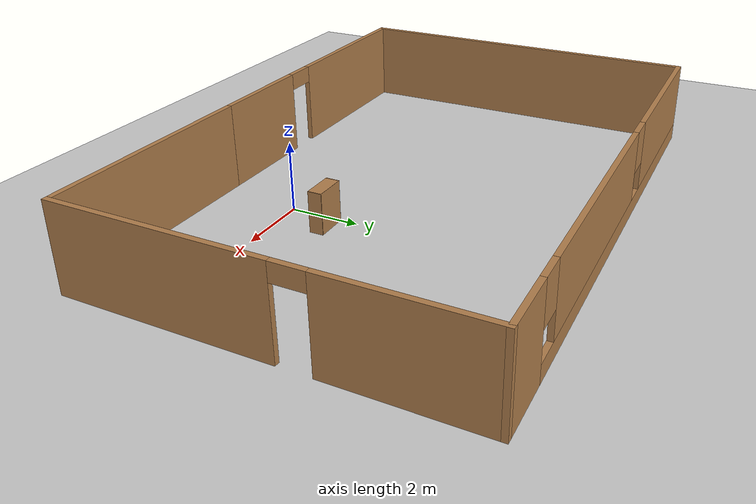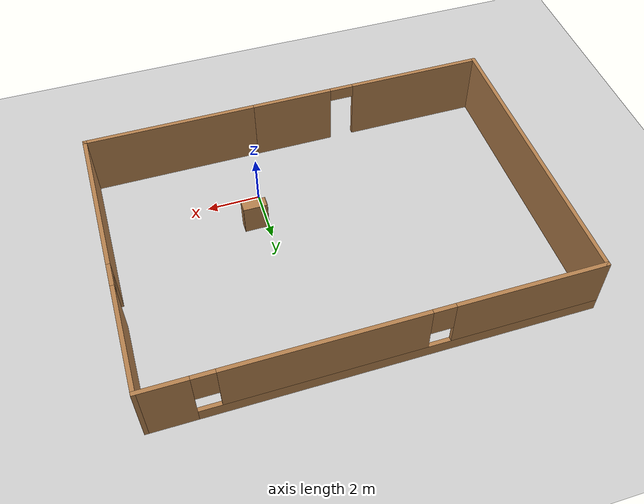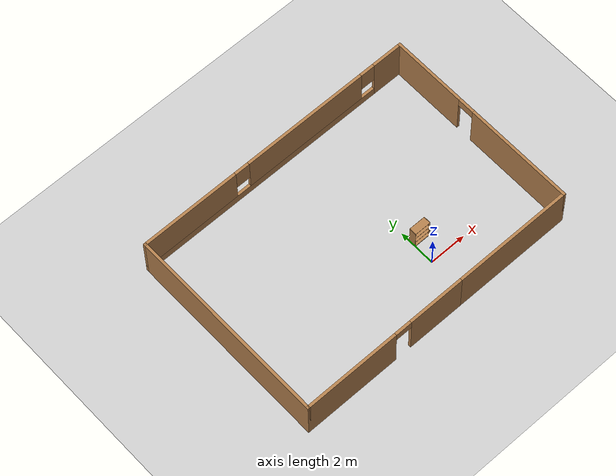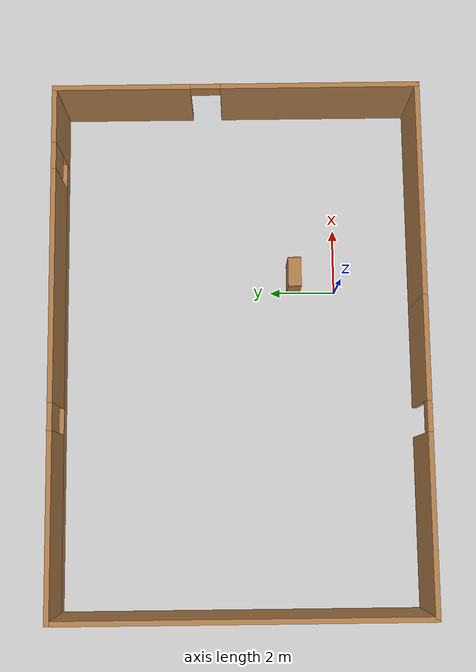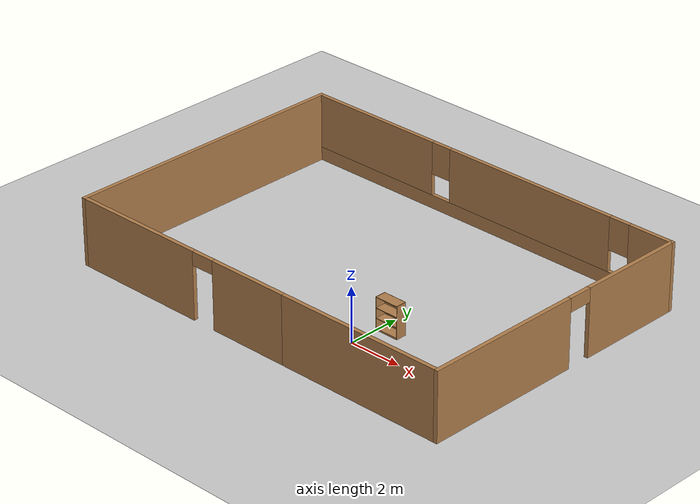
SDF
<sdf version="1.7">
 <world name="default">
  <light name="sun" type="directional">
   <pose>0 0 10 0 -0 0</pose>
   <diffuse>0.8 0.8 0.8 1</diffuse>
   <specular>0.2 0.2 0.2 1</specular>
   <attenuation>
    <range>1000</range>
    <constant>0.9</constant>
    <linear>0.01</linear>
    <quadratic>0.001</quadratic>
   </attenuation>
   <direction>-0.5 0.1 -0.9</direction>
   <spot><inner_angle>0</inner_angle><outer_angle>0</outer_angle><falloff>0</falloff></spot>
  </light>
  <model name="ground_plane">
   <static>1</static>
   <link name="link">
    <collision name="collision">
     <geometry><plane><normal>0 0 1</normal><size>100 100</size></plane></geometry>
     <surface><friction><ode><mu>100</mu><mu2>50</mu2></ode></friction></surface>
    </collision>
    <visual name="visual">
     <cast_shadows>0</cast_shadows>
     <geometry><plane><normal>0 0 1</normal><size>100 100</size></plane></geometry>
     <material>
      <script><uri>file://media/materials/scripts/gazebo.material</uri><name>Gazebo/Grey</name></script>
     </material>
    </visual>
   </link>
  </model>
  <gravity>0 0 -9.8</gravity>
  <magnetic_field>6e-06 2.3e-05 -4.2e-05</magnetic_field>
  <atmosphere type="adiabatic"/>
  <physics type="ode">
   <max_step_size>0.001</max_step_size>
   <real_time_factor>1</real_time_factor>
   <real_time_update_rate>1000</real_time_update_rate>
  </physics>
  <scene><ambient>0.4 0.4 0.4 1</ambient><background>0.7 0.7 0.7 1</background><shadows>1</shadows></scene>
  <audio><device>default</device></audio>
  <spherical_coordinates>
   <surface_model>EARTH_WGS84</surface_model>
   <latitude_deg>0</latitude_deg>
   <longitude_deg>0</longitude_deg>
   <elevation>0</elevation>
   <heading_deg>0</heading_deg>
  </spherical_coordinates>
  <model name="bookshelf">
   <static>1</static>
   <link name="link">
    <inertial><mass>1</mass></inertial>
    <collision name="back">
     <pose>0 0.005 0.6 0 -0 0</pose>
     <geometry><box><size>0.9 0.01 1.2</size></box></geometry>
    </collision>
    <visual name="visual1">
     <pose>0 0.005 0.6 0 -0 0</pose>
     <geometry><box><size>0.9 0.01 1.2</size></box></geometry>
     <material>
      <script><uri>file://media/materials/scripts/gazebo.material</uri><name>Gazebo/Wood</name></script>
     </material>
    </visual>
    <collision name="left_side">
     <pose>0.45 -0.195 0.6 0 -0 0</pose>
     <geometry><box><size>0.02 0.4 1.2</size></box></geometry>
    </collision>
    <visual name="visual2">
     <pose>0.45 -0.195 0.6 0 -0 0</pose>
     <geometry><box><size>0.02 0.4 1.2</size></box></geometry>
     <material>
      <script><uri>file://media/materials/scripts/gazebo.material</uri><name>Gazebo/Wood</name></script>
     </material>
    </visual>
    <collision name="right_side">
     <pose>-0.45 -0.195 0.6 0 -0 0</pose>
     <geometry><box><size>0.02 0.4 1.2</size></box></geometry>
    </collision>
    <visual name="visual3">
     <pose>-0.45 -0.195 0.6 0 -0 0</pose>
     <geometry><box><size>0.02 0.4 1.2</size></box></geometry>
     <material>
      <script><uri>file://media/materials/scripts/gazebo.material</uri><name>Gazebo/Wood</name></script>
     </material>
    </visual>
    <collision name="bottom">
     <pose>0 -0.195 0.03 0 -0 0</pose>
     <geometry><box><size>0.88 0.4 0.06</size></box></geometry>
    </collision>
    <visual name="visual4">
     <pose>0 -0.195 0.03 0 -0 0</pose>
     <geometry><box><size>0.88 0.4 0.06</size></box></geometry>
     <material>
      <script><uri>file://media/materials/scripts/gazebo.material</uri><name>Gazebo/Wood</name></script>
     </material>
    </visual>
    <collision name="top">
     <pose>0 -0.195 1.19 0 -0 0</pose>
     <geometry><box><size>0.88 0.4 0.02</size></box></geometry>
    </collision>
    <visual name="visual5">
     <pose>0 -0.195 1.19 0 -0 0</pose>
     <geometry><box><size>0.88 0.4 0.02</size></box></geometry>
     <material>
      <script><uri>file://media/materials/scripts/gazebo.material</uri><name>Gazebo/Wood</name></script>
     </material>
    </visual>
    <collision name="low_shelf">
     <pose>0 -0.195 0.43 0 -0 0</pose>
     <geometry><box><size>0.88 0.4 0.02</size></box></geometry>
    </collision>
    <visual name="visual6">
     <pose>0 -0.195 0.43 0 -0 0</pose>
     <geometry><box><size>0.88 0.4 0.02</size></box></geometry>
     <material>
      <script><uri>file://media/materials/scripts/gazebo.material</uri><name>Gazebo/Wood</name></script>
     </material>
    </visual>
    <collision name="high_shelf">
     <pose>0 -0.195 0.8 0 -0 0</pose>
     <geometry><box><size>0.88 0.4 0.02</size></box></geometry>
    </collision>
    <visual name="visual7">
     <pose>0 -0.195 0.8 0 -0 0</pose>
     <geometry><box><size>0.88 0.4 0.02</size></box></geometry>
     <material>
      <script><uri>file://media/materials/scripts/gazebo.material</uri><name>Gazebo/Wood</name></script>
     </material>
    </visual>
   </link>
   <pose>0.438893 1.48963 0 0 -0 0</pose>
  </model>
  <model name="test">
   <pose>-1.95 3.025 0 0 -0 0</pose>
   <link name="Wall_0">
    <collision name="Wall_0_Collision">
     <geometry><box><size>6.5 0.15 2.5</size></box></geometry>
     <pose>0 0 1.25 0 -0 0</pose>
    </collision>
    <visual name="Wall_0_Visual">
     <pose>0 0 1.25 0 -0 0</pose>
     <geometry><box><size>6.5 0.15 2.5</size></box></geometry>
     <material>
      <script><uri>file://media/materials/scripts/gazebo.material</uri><name>Gazebo/Wood</name></script>
      <ambient>1 1 1 1</ambient>
     </material>
     <meta><layer>0</layer></meta>
    </visual>
    <pose>4.625 -5.425 0 0 -0 0</pose>
   </link>
   <link name="Wall_2">
    <pose>7.8 0 0 0 -0 1.5708</pose>
    <visual name="Wall_2_Visual_0">
     <pose>-2.51718 0 1.25 0 -0 0</pose>
     <geometry><box><size>5.96564 0.15 2.5</size></box></geometry>
     <material>
      <script><uri>file://media/materials/scripts/gazebo.material</uri><name>Gazebo/Wood</name></script>
      <ambient>1 1 1 1</ambient>
     </material>
     <meta><layer>0</layer></meta>
    </visual>
    <collision name="Wall_2_Collision_0">
     <geometry><box><size>5.96564 0.15 2.5</size></box></geometry>
     <pose>-2.51718 0 1.25 0 -0 0</pose>
    </collision>
    <visual name="Wall_2_Visual_1">
     <pose>3.43282 0 1.25 0 -0 0</pose>
     <geometry><box><size>4.13436 0.15 2.5</size></box></geometry>
     <material>
      <script><uri>file://media/materials/scripts/gazebo.material</uri><name>Gazebo/Wood</name></script>
      <ambient>1 1 1 1</ambient>
     </material>
     <meta><layer>0</layer></meta>
    </visual>
    <collision name="Wall_2_Collision_1">
     <geometry><box><size>4.13436 0.15 2.5</size></box></geometry>
     <pose>3.43282 0 1.25 0 -0 0</pose>
    </collision>
    <visual name="Wall_2_Visual_2">
     <pose>0.915644 0 2.25 0 -0 0</pose>
     <geometry><box><size>0.9 0.15 0.5</size></box></geometry>
     <material>
      <script><uri>file://media/materials/scripts/gazebo.material</uri><name>Gazebo/Wood</name></script>
      <ambient>1 1 1 1</ambient>
     </material>
     <meta><layer>0</layer></meta>
    </visual>
    <collision name="Wall_2_Collision_2">
     <geometry><box><size>0.9 0.15 0.5</size></box></geometry>
     <pose>0.915644 0 2.25 0 -0 0</pose>
    </collision>
   </link>
   <link name="Wall_3">
    <pose>0 5.425 0 0 -0 3.14159</pose>
    <visual name="Wall_3_Visual_0">
     <pose>-6.99254 0 1.25 0 -0 0</pose>
     <geometry><box><size>1.76491 0.15 2.5</size></box></geometry>
     <material>
      <script><uri>file://media/materials/scripts/gazebo.material</uri><name>Gazebo/Wood</name></script>
      <ambient>1 1 1 1</ambient>
     </material>
     <meta><layer>0</layer></meta>
    </visual>
    <collision name="Wall_3_Collision_0">
     <geometry><box><size>1.76491 0.15 2.5</size></box></geometry>
     <pose>-6.99254 0 1.25 0 -0 0</pose>
    </collision>
    <visual name="Wall_3_Visual_1">
     <pose>0.882456 0 0.25 0 -0 0</pose>
     <geometry><box><size>13.9851 0.15 0.5</size></box></geometry>
     <material>
      <script><uri>file://media/materials/scripts/gazebo.material</uri><name>Gazebo/Wood</name></script>
      <ambient>1 1 1 1</ambient>
     </material>
     <meta><layer>0</layer></meta>
    </visual>
    <collision name="Wall_3_Collision_1">
     <geometry><box><size>13.9851 0.15 0.5</size></box></geometry>
     <pose>0.882456 0 0.25 0 -0 0</pose>
    </collision>
    <visual name="Wall_3_Visual_2">
     <pose>-1.83211 0 1.5 0 -0 0</pose>
     <geometry><box><size>6.95596 0.15 2</size></box></geometry>
     <material>
      <script><uri>file://media/materials/scripts/gazebo.material</uri><name>Gazebo/Wood</name></script>
      <ambient>1 1 1 1</ambient>
     </material>
     <meta><layer>0</layer></meta>
    </visual>
    <collision name="Wall_3_Collision_2">
     <geometry><box><size>6.95596 0.15 2</size></box></geometry>
     <pose>-1.83211 0 1.5 0 -0 0</pose>
    </collision>
    <visual name="Wall_3_Visual_3">
     <pose>5.16043 0 1.5 0 -0 0</pose>
     <geometry><box><size>5.42913 0.15 2</size></box></geometry>
     <material>
      <script><uri>file://media/materials/scripts/gazebo.material</uri><name>Gazebo/Wood</name></script>
      <ambient>1 1 1 1</ambient>
     </material>
     <meta><layer>0</layer></meta>
    </visual>
    <collision name="Wall_3_Collision_3">
     <geometry><box><size>5.42913 0.15 2</size></box></geometry>
     <pose>5.16043 0 1.5 0 -0 0</pose>
    </collision>
    <visual name="Wall_3_Visual_4">
     <pose>-5.71009 0 1.9 0 -0 0</pose>
     <geometry><box><size>0.8 0.15 1.2</size></box></geometry>
     <material>
      <script><uri>file://media/materials/scripts/gazebo.material</uri><name>Gazebo/Wood</name></script>
      <ambient>1 1 1 1</ambient>
     </material>
     <meta><layer>0</layer></meta>
    </visual>
    <collision name="Wall_3_Collision_4">
     <geometry><box><size>0.8 0.15 1.2</size></box></geometry>
     <pose>-5.71009 0 1.9 0 -0 0</pose>
    </collision>
    <visual name="Wall_3_Visual_5">
     <pose>2.04587 0 1.9 0 -0 0</pose>
     <geometry><box><size>0.8 0.15 1.2</size></box></geometry>
     <material>
      <script><uri>file://media/materials/scripts/gazebo.material</uri><name>Gazebo/Wood</name></script>
      <ambient>1 1 1 1</ambient>
     </material>
     <meta><layer>0</layer></meta>
    </visual>
    <collision name="Wall_3_Collision_5">
     <geometry><box><size>0.8 0.15 1.2</size></box></geometry>
     <pose>2.04587 0 1.9 0 -0 0</pose>
    </collision>
   </link>
   <link name="Wall_4">
    <collision name="Wall_4_Collision">
     <geometry><box><size>11 0.15 2.5</size></box></geometry>
     <pose>0 0 1.25 0 -0 0</pose>
    </collision>
    <visual name="Wall_4_Visual">
     <pose>0 0 1.25 0 -0 0</pose>
     <geometry><box><size>11 0.15 2.5</size></box></geometry>
     <material>
      <script><uri>file://media/materials/scripts/gazebo.material</uri><name>Gazebo/Wood</name></script>
      <ambient>1 1 1 1</ambient>
     </material>
     <meta><layer>0</layer></meta>
    </visual>
    <pose>-7.8 0 0 0 -0 -1.5708</pose>
   </link>
   <link name="Wall_5">
    <pose>-3.25 -5.425 0 0 -0 0</pose>
    <visual name="Wall_5_Visual_0">
     <pose>-1.9951 0 1.25 0 -0 0</pose>
     <geometry><box><size>5.25981 0.15 2.5</size></box></geometry>
     <material>
      <script><uri>file://media/materials/scripts/gazebo.material</uri><name>Gazebo/Wood</name></script>
      <ambient>1 1 1 1</ambient>
     </material>
     <meta><layer>0</layer></meta>
    </visual>
    <collision name="Wall_5_Collision_0">
     <geometry><box><size>5.25981 0.15 2.5</size></box></geometry>
     <pose>-1.9951 0 1.25 0 -0 0</pose>
    </collision>
    <visual name="Wall_5_Visual_1">
     <pose>3.07991 0 1.25 0 -0 0</pose>
     <geometry><box><size>3.09019 0.15 2.5</size></box></geometry>
     <material>
      <script><uri>file://media/materials/scripts/gazebo.material</uri><name>Gazebo/Wood</name></script>
      <ambient>1 1 1 1</ambient>
     </material>
     <meta><layer>0</layer></meta>
    </visual>
    <collision name="Wall_5_Collision_1">
     <geometry><box><size>3.09019 0.15 2.5</size></box></geometry>
     <pose>3.07991 0 1.25 0 -0 0</pose>
    </collision>
    <visual name="Wall_5_Visual_2">
     <pose>1.08481 0 2.25 0 -0 0</pose>
     <geometry><box><size>0.9 0.15 0.5</size></box></geometry>
     <material>
      <script><uri>file://media/materials/scripts/gazebo.material</uri><name>Gazebo/Wood</name></script>
      <ambient>1 1 1 1</ambient>
     </material>
     <meta><layer>0</layer></meta>
    </visual>
    <collision name="Wall_5_Collision_2">
     <geometry><box><size>0.9 0.15 0.5</size></box></geometry>
     <pose>1.08481 0 2.25 0 -0 0</pose>
    </collision>
   </link>
   <static>1</static>
  </model>
 </world>
</sdf>
